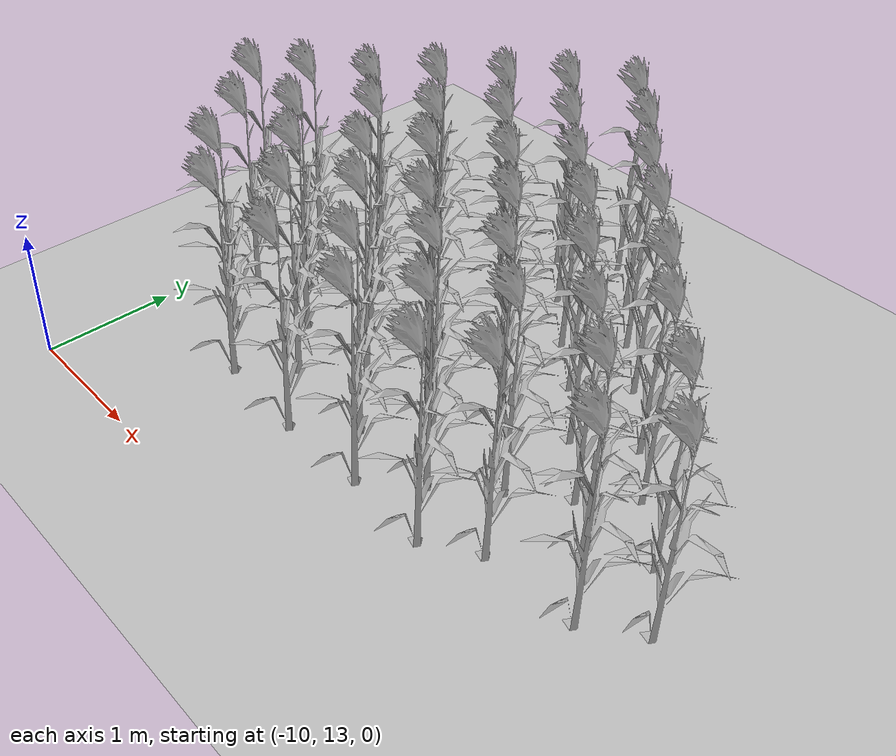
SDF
<sdf version="1.7">
 <world name="farmland_world">
  <model name="ground_plane">
   <static>1</static>
   <link name="link">
    <collision name="collision">
     <geometry><plane><normal>0 0 1</normal><size>40.0 40.0</size></plane></geometry>
     <surface><friction><ode><mu>100</mu><mu2>50</mu2></ode></friction></surface>
    </collision>
    <visual name="visual">
     <cast_shadows>0</cast_shadows>
     <geometry><plane><normal>0 0 1</normal><size>40.0 40.0</size></plane></geometry>
     <material>
      <script><uri>file://media/materials/scripts/gazebo.material</uri><name>Gazebo/Grey</name></script>
     </material>
    </visual>
   </link>
  </model>
  <model name="tree_3_38">
   <static>1</static>
   <link name="link">
    <collision name="collision">
     <geometry><mesh><uri>model://Corn_low_poly/corn.obj</uri><scale>1 1 1</scale></mesh></geometry>
     <surface><friction><ode><mu>100</mu><mu2>50</mu2></ode></friction></surface>
    </collision>
    <visual name="visual">
     <geometry><mesh><uri>model://Corn_low_poly/corn.obj</uri><scale>1 1 1</scale></mesh></geometry>
    </visual>
   </link>
   <pose>-8.891174129363076 13.91824194606996 0 0 0 0</pose>
  </model>
  <model name="tree_3_39">
   <static>1</static>
   <link name="link">
    <collision name="collision">
     <geometry><mesh><uri>model://Corn_low_poly/corn.obj</uri><scale>1 1 1</scale></mesh></geometry>
     <surface><friction><ode><mu>100</mu><mu2>50</mu2></ode></friction></surface>
    </collision>
    <visual name="visual">
     <geometry><mesh><uri>model://Corn_low_poly/corn.obj</uri><scale>1 1 1</scale></mesh></geometry>
    </visual>
   </link>
   <pose>-9.307649380660706 14.218395403183546 0 0 0 0</pose>
  </model>
  <model name="tree_3_40">
   <static>1</static>
   <link name="link">
    <collision name="collision">
     <geometry><mesh><uri>model://Corn_low_poly/corn.obj</uri><scale>1 1 1</scale></mesh></geometry>
     <surface><friction><ode><mu>100</mu><mu2>50</mu2></ode></friction></surface>
    </collision>
    <visual name="visual">
     <geometry><mesh><uri>model://Corn_low_poly/corn.obj</uri><scale>1 1 1</scale></mesh></geometry>
    </visual>
   </link>
   <pose>-9.621351456724668 14.651758770271607 0 0 0 0</pose>
  </model>
  <model name="tree_3_41">
   <static>1</static>
   <link name="link">
    <collision name="collision">
     <geometry><mesh><uri>model://Corn_low_poly/corn.obj</uri><scale>1 1 1</scale></mesh></geometry>
     <surface><friction><ode><mu>100</mu><mu2>50</mu2></ode></friction></surface>
    </collision>
    <visual name="visual">
     <geometry><mesh><uri>model://Corn_low_poly/corn.obj</uri><scale>1 1 1</scale></mesh></geometry>
    </visual>
   </link>
   <pose>-9.985132939946 15.040043317198316 0 0 0 0</pose>
  </model>
  <model name="tree_3_79">
   <static>1</static>
   <link name="link">
    <collision name="collision">
     <geometry><mesh><uri>model://Corn_low_poly/corn.obj</uri><scale>1 1 1</scale></mesh></geometry>
     <surface><friction><ode><mu>100</mu><mu2>50</mu2></ode></friction></surface>
    </collision>
    <visual name="visual">
     <geometry><mesh><uri>model://Corn_low_poly/corn.obj</uri><scale>1 1 1</scale></mesh></geometry>
    </visual>
   </link>
   <pose>-8.167578024957358 13.864423715161175 0 0 0 0</pose>
  </model>
  <model name="tree_3_80">
   <static>1</static>
   <link name="link">
    <collision name="collision">
     <geometry><mesh><uri>model://Corn_low_poly/corn.obj</uri><scale>1 1 1</scale></mesh></geometry>
     <surface><friction><ode><mu>100</mu><mu2>50</mu2></ode></friction></surface>
    </collision>
    <visual name="visual">
     <geometry><mesh><uri>model://Corn_low_poly/corn.obj</uri><scale>1 1 1</scale></mesh></geometry>
    </visual>
   </link>
   <pose>-8.600329314650093 14.276255841382465 0 0 0 0</pose>
  </model>
  <model name="tree_3_81">
   <static>1</static>
   <link name="link">
    <collision name="collision">
     <geometry><mesh><uri>model://Corn_low_poly/corn.obj</uri><scale>1 1 1</scale></mesh></geometry>
     <surface><friction><ode><mu>100</mu><mu2>50</mu2></ode></friction></surface>
    </collision>
    <visual name="visual">
     <geometry><mesh><uri>model://Corn_low_poly/corn.obj</uri><scale>1 1 1</scale></mesh></geometry>
    </visual>
   </link>
   <pose>-8.965540753583443 14.631921202328222 0 0 0 0</pose>
  </model>
  <model name="tree_3_82">
   <static>1</static>
   <link name="link">
    <collision name="collision">
     <geometry><mesh><uri>model://Corn_low_poly/corn.obj</uri><scale>1 1 1</scale></mesh></geometry>
     <surface><friction><ode><mu>100</mu><mu2>50</mu2></ode></friction></surface>
    </collision>
    <visual name="visual">
     <geometry><mesh><uri>model://Corn_low_poly/corn.obj</uri><scale>1 1 1</scale></mesh></geometry>
    </visual>
   </link>
   <pose>-9.341134822959361 14.934578791125151 0 0 0 0</pose>
  </model>
  <model name="tree_3_83">
   <static>1</static>
   <link name="link">
    <collision name="collision">
     <geometry><mesh><uri>model://Corn_low_poly/corn.obj</uri><scale>1 1 1</scale></mesh></geometry>
     <surface><friction><ode><mu>100</mu><mu2>50</mu2></ode></friction></surface>
    </collision>
    <visual name="visual">
     <geometry><mesh><uri>model://Corn_low_poly/corn.obj</uri><scale>1 1 1</scale></mesh></geometry>
    </visual>
   </link>
   <pose>-9.716573105773191 15.33830600436325 0 0 0 0</pose>
  </model>
  <model name="tree_3_120">
   <static>1</static>
   <link name="link">
    <collision name="collision">
     <geometry><mesh><uri>model://Corn_low_poly/corn.obj</uri><scale>1 1 1</scale></mesh></geometry>
     <surface><friction><ode><mu>100</mu><mu2>50</mu2></ode></friction></surface>
    </collision>
    <visual name="visual">
     <geometry><mesh><uri>model://Corn_low_poly/corn.obj</uri><scale>1 1 1</scale></mesh></geometry>
    </visual>
   </link>
   <pose>-7.483291994920764 13.883653861560314 0 0 0 0</pose>
  </model>
  <model name="tree_3_121">
   <static>1</static>
   <link name="link">
    <collision name="collision">
     <geometry><mesh><uri>model://Corn_low_poly/corn.obj</uri><scale>1 1 1</scale></mesh></geometry>
     <surface><friction><ode><mu>100</mu><mu2>50</mu2></ode></friction></surface>
    </collision>
    <visual name="visual">
     <geometry><mesh><uri>model://Corn_low_poly/corn.obj</uri><scale>1 1 1</scale></mesh></geometry>
    </visual>
   </link>
   <pose>-7.828971657432185 14.207264702212273 0 0 0 0</pose>
  </model>
  <model name="tree_3_122">
   <static>1</static>
   <link name="link">
    <collision name="collision">
     <geometry><mesh><uri>model://Corn_low_poly/corn.obj</uri><scale>1 1 1</scale></mesh></geometry>
     <surface><friction><ode><mu>100</mu><mu2>50</mu2></ode></friction></surface>
    </collision>
    <visual name="visual">
     <geometry><mesh><uri>model://Corn_low_poly/corn.obj</uri><scale>1 1 1</scale></mesh></geometry>
    </visual>
   </link>
   <pose>-8.248117083434586 14.61874428466852 0 0 0 0</pose>
  </model>
  <model name="tree_3_123">
   <static>1</static>
   <link name="link">
    <collision name="collision">
     <geometry><mesh><uri>model://Corn_low_poly/corn.obj</uri><scale>1 1 1</scale></mesh></geometry>
     <surface><friction><ode><mu>100</mu><mu2>50</mu2></ode></friction></surface>
    </collision>
    <visual name="visual">
     <geometry><mesh><uri>model://Corn_low_poly/corn.obj</uri><scale>1 1 1</scale></mesh></geometry>
    </visual>
   </link>
   <pose>-8.617351034218144 14.964083626259745 0 0 0 0</pose>
  </model>
  <model name="tree_3_124">
   <static>1</static>
   <link name="link">
    <collision name="collision">
     <geometry><mesh><uri>model://Corn_low_poly/corn.obj</uri><scale>1 1 1</scale></mesh></geometry>
     <surface><friction><ode><mu>100</mu><mu2>50</mu2></ode></friction></surface>
    </collision>
    <visual name="visual">
     <geometry><mesh><uri>model://Corn_low_poly/corn.obj</uri><scale>1 1 1</scale></mesh></geometry>
    </visual>
   </link>
   <pose>-8.9673074540992 15.352462581514478 0 0 0 0</pose>
  </model>
  <model name="tree_3_125">
   <static>1</static>
   <link name="link">
    <collision name="collision">
     <geometry><mesh><uri>model://Corn_low_poly/corn.obj</uri><scale>1 1 1</scale></mesh></geometry>
     <surface><friction><ode><mu>100</mu><mu2>50</mu2></ode></friction></surface>
    </collision>
    <visual name="visual">
     <geometry><mesh><uri>model://Corn_low_poly/corn.obj</uri><scale>1 1 1</scale></mesh></geometry>
    </visual>
   </link>
   <pose>-9.342893099528833 15.64641191831029 0 0 0 0</pose>
  </model>
  <model name="tree_3_161">
   <static>1</static>
   <link name="link">
    <collision name="collision">
     <geometry><mesh><uri>model://Corn_low_poly/corn.obj</uri><scale>1 1 1</scale></mesh></geometry>
     <surface><friction><ode><mu>100</mu><mu2>50</mu2></ode></friction></surface>
    </collision>
    <visual name="visual">
     <geometry><mesh><uri>model://Corn_low_poly/corn.obj</uri><scale>1 1 1</scale></mesh></geometry>
    </visual>
   </link>
   <pose>-6.845026655220183 13.849787404218223 0 0 0 0</pose>
  </model>
  <model name="tree_3_162">
   <static>1</static>
   <link name="link">
    <collision name="collision">
     <geometry><mesh><uri>model://Corn_low_poly/corn.obj</uri><scale>1 1 1</scale></mesh></geometry>
     <surface><friction><ode><mu>100</mu><mu2>50</mu2></ode></friction></surface>
    </collision>
    <visual name="visual">
     <geometry><mesh><uri>model://Corn_low_poly/corn.obj</uri><scale>1 1 1</scale></mesh></geometry>
    </visual>
   </link>
   <pose>-7.150239401687551 14.20265445098339 0 0 0 0</pose>
  </model>
  <model name="tree_3_163">
   <static>1</static>
   <link name="link">
    <collision name="collision">
     <geometry><mesh><uri>model://Corn_low_poly/corn.obj</uri><scale>1 1 1</scale></mesh></geometry>
     <surface><friction><ode><mu>100</mu><mu2>50</mu2></ode></friction></surface>
    </collision>
    <visual name="visual">
     <geometry><mesh><uri>model://Corn_low_poly/corn.obj</uri><scale>1 1 1</scale></mesh></geometry>
    </visual>
   </link>
   <pose>-7.5103032101220935 14.580755709355337 0 0 0 0</pose>
  </model>
  <model name="tree_3_164">
   <static>1</static>
   <link name="link">
    <collision name="collision">
     <geometry><mesh><uri>model://Corn_low_poly/corn.obj</uri><scale>1 1 1</scale></mesh></geometry>
     <surface><friction><ode><mu>100</mu><mu2>50</mu2></ode></friction></surface>
    </collision>
    <visual name="visual">
     <geometry><mesh><uri>model://Corn_low_poly/corn.obj</uri><scale>1 1 1</scale></mesh></geometry>
    </visual>
   </link>
   <pose>-7.882221309228659 14.867059814286716 0 0 0 0</pose>
  </model>
  <model name="tree_3_165">
   <static>1</static>
   <link name="link">
    <collision name="collision">
     <geometry><mesh><uri>model://Corn_low_poly/corn.obj</uri><scale>1 1 1</scale></mesh></geometry>
     <surface><friction><ode><mu>100</mu><mu2>50</mu2></ode></friction></surface>
    </collision>
    <visual name="visual">
     <geometry><mesh><uri>model://Corn_low_poly/corn.obj</uri><scale>1 1 1</scale></mesh></geometry>
    </visual>
   </link>
   <pose>-8.314603599865444 15.288483118946912 0 0 0 0</pose>
  </model>
  <model name="tree_3_166">
   <static>1</static>
   <link name="link">
    <collision name="collision">
     <geometry><mesh><uri>model://Corn_low_poly/corn.obj</uri><scale>1 1 1</scale></mesh></geometry>
     <surface><friction><ode><mu>100</mu><mu2>50</mu2></ode></friction></surface>
    </collision>
    <visual name="visual">
     <geometry><mesh><uri>model://Corn_low_poly/corn.obj</uri><scale>1 1 1</scale></mesh></geometry>
    </visual>
   </link>
   <pose>-8.651029424888728 15.645671582871948 0 0 0 0</pose>
  </model>
  <model name="tree_3_167">
   <static>1</static>
   <link name="link">
    <collision name="collision">
     <geometry><mesh><uri>model://Corn_low_poly/corn.obj</uri><scale>1 1 1</scale></mesh></geometry>
     <surface><friction><ode><mu>100</mu><mu2>50</mu2></ode></friction></surface>
    </collision>
    <visual name="visual">
     <geometry><mesh><uri>model://Corn_low_poly/corn.obj</uri><scale>1 1 1</scale></mesh></geometry>
    </visual>
   </link>
   <pose>-9.045445254423946 16.038293757891783 0 0 0 0</pose>
  </model>
  <model name="tree_3_203">
   <static>1</static>
   <link name="link">
    <collision name="collision">
     <geometry><mesh><uri>model://Corn_low_poly/corn.obj</uri><scale>1 1 1</scale></mesh></geometry>
     <surface><friction><ode><mu>100</mu><mu2>50</mu2></ode></friction></surface>
    </collision>
    <visual name="visual">
     <geometry><mesh><uri>model://Corn_low_poly/corn.obj</uri><scale>1 1 1</scale></mesh></geometry>
    </visual>
   </link>
   <pose>-6.496506932567802 14.090196139342972 0 0 0 0</pose>
  </model>
  <model name="tree_3_204">
   <static>1</static>
   <link name="link">
    <collision name="collision">
     <geometry><mesh><uri>model://Corn_low_poly/corn.obj</uri><scale>1 1 1</scale></mesh></geometry>
     <surface><friction><ode><mu>100</mu><mu2>50</mu2></ode></friction></surface>
    </collision>
    <visual name="visual">
     <geometry><mesh><uri>model://Corn_low_poly/corn.obj</uri><scale>1 1 1</scale></mesh></geometry>
    </visual>
   </link>
   <pose>-6.7928915732429 14.545404306601862 0 0 0 0</pose>
  </model>
  <model name="tree_3_205">
   <static>1</static>
   <link name="link">
    <collision name="collision">
     <geometry><mesh><uri>model://Corn_low_poly/corn.obj</uri><scale>1 1 1</scale></mesh></geometry>
     <surface><friction><ode><mu>100</mu><mu2>50</mu2></ode></friction></surface>
    </collision>
    <visual name="visual">
     <geometry><mesh><uri>model://Corn_low_poly/corn.obj</uri><scale>1 1 1</scale></mesh></geometry>
    </visual>
   </link>
   <pose>-7.177286279498393 14.871963747843747 0 0 0 0</pose>
  </model>
  <model name="tree_3_206">
   <static>1</static>
   <link name="link">
    <collision name="collision">
     <geometry><mesh><uri>model://Corn_low_poly/corn.obj</uri><scale>1 1 1</scale></mesh></geometry>
     <surface><friction><ode><mu>100</mu><mu2>50</mu2></ode></friction></surface>
    </collision>
    <visual name="visual">
     <geometry><mesh><uri>model://Corn_low_poly/corn.obj</uri><scale>1 1 1</scale></mesh></geometry>
    </visual>
   </link>
   <pose>-7.524567767702653 15.266206441734292 0 0 0 0</pose>
  </model>
  <model name="tree_3_207">
   <static>1</static>
   <link name="link">
    <collision name="collision">
     <geometry><mesh><uri>model://Corn_low_poly/corn.obj</uri><scale>1 1 1</scale></mesh></geometry>
     <surface><friction><ode><mu>100</mu><mu2>50</mu2></ode></friction></surface>
    </collision>
    <visual name="visual">
     <geometry><mesh><uri>model://Corn_low_poly/corn.obj</uri><scale>1 1 1</scale></mesh></geometry>
    </visual>
   </link>
   <pose>-7.89063536347098 15.616199905616472 0 0 0 0</pose>
  </model>
  <model name="tree_3_208">
   <static>1</static>
   <link name="link">
    <collision name="collision">
     <geometry><mesh><uri>model://Corn_low_poly/corn.obj</uri><scale>1 1 1</scale></mesh></geometry>
     <surface><friction><ode><mu>100</mu><mu2>50</mu2></ode></friction></surface>
    </collision>
    <visual name="visual">
     <geometry><mesh><uri>model://Corn_low_poly/corn.obj</uri><scale>1 1 1</scale></mesh></geometry>
    </visual>
   </link>
   <pose>-8.31725446418663 15.995354845681133 0 0 0 0</pose>
  </model>
  <model name="tree_3_209">
   <static>1</static>
   <link name="link">
    <collision name="collision">
     <geometry><mesh><uri>model://Corn_low_poly/corn.obj</uri><scale>1 1 1</scale></mesh></geometry>
     <surface><friction><ode><mu>100</mu><mu2>50</mu2></ode></friction></surface>
    </collision>
    <visual name="visual">
     <geometry><mesh><uri>model://Corn_low_poly/corn.obj</uri><scale>1 1 1</scale></mesh></geometry>
    </visual>
   </link>
   <pose>-8.673989058153081 16.379698872209197 0 0 0 0</pose>
  </model>
  <model name="tree_3_244">
   <static>1</static>
   <link name="link">
    <collision name="collision">
     <geometry><mesh><uri>model://Corn_low_poly/corn.obj</uri><scale>1 1 1</scale></mesh></geometry>
     <surface><friction><ode><mu>100</mu><mu2>50</mu2></ode></friction></surface>
    </collision>
    <visual name="visual">
     <geometry><mesh><uri>model://Corn_low_poly/corn.obj</uri><scale>1 1 1</scale></mesh></geometry>
    </visual>
   </link>
   <pose>-5.80946691772435 14.125211774315895 0 0 0 0</pose>
  </model>
  <model name="tree_3_245">
   <static>1</static>
   <link name="link">
    <collision name="collision">
     <geometry><mesh><uri>model://Corn_low_poly/corn.obj</uri><scale>1 1 1</scale></mesh></geometry>
     <surface><friction><ode><mu>100</mu><mu2>50</mu2></ode></friction></surface>
    </collision>
    <visual name="visual">
     <geometry><mesh><uri>model://Corn_low_poly/corn.obj</uri><scale>1 1 1</scale></mesh></geometry>
    </visual>
   </link>
   <pose>-6.114767333163991 14.521435371826511 0 0 0 0</pose>
  </model>
  <model name="tree_3_246">
   <static>1</static>
   <link name="link">
    <collision name="collision">
     <geometry><mesh><uri>model://Corn_low_poly/corn.obj</uri><scale>1 1 1</scale></mesh></geometry>
     <surface><friction><ode><mu>100</mu><mu2>50</mu2></ode></friction></surface>
    </collision>
    <visual name="visual">
     <geometry><mesh><uri>model://Corn_low_poly/corn.obj</uri><scale>1 1 1</scale></mesh></geometry>
    </visual>
   </link>
   <pose>-6.4580259417450705 14.841731782894028 0 0 0 0</pose>
  </model>
  <model name="tree_3_247">
   <static>1</static>
   <link name="link">
    <collision name="collision">
     <geometry><mesh><uri>model://Corn_low_poly/corn.obj</uri><scale>1 1 1</scale></mesh></geometry>
     <surface><friction><ode><mu>100</mu><mu2>50</mu2></ode></friction></surface>
    </collision>
    <visual name="visual">
     <geometry><mesh><uri>model://Corn_low_poly/corn.obj</uri><scale>1 1 1</scale></mesh></geometry>
    </visual>
   </link>
   <pose>-6.852962348636145 15.225188194240992 0 0 0 0</pose>
  </model>
  <model name="tree_3_248">
   <static>1</static>
   <link name="link">
    <collision name="collision">
     <geometry><mesh><uri>model://Corn_low_poly/corn.obj</uri><scale>1 1 1</scale></mesh></geometry>
     <surface><friction><ode><mu>100</mu><mu2>50</mu2></ode></friction></surface>
    </collision>
    <visual name="visual">
     <geometry><mesh><uri>model://Corn_low_poly/corn.obj</uri><scale>1 1 1</scale></mesh></geometry>
    </visual>
   </link>
   <pose>-7.218884295110604 15.616212279994588 0 0 0 0</pose>
  </model>
  <model name="tree_3_249">
   <static>1</static>
   <link name="link">
    <collision name="collision">
     <geometry><mesh><uri>model://Corn_low_poly/corn.obj</uri><scale>1 1 1</scale></mesh></geometry>
     <surface><friction><ode><mu>100</mu><mu2>50</mu2></ode></friction></surface>
    </collision>
    <visual name="visual">
     <geometry><mesh><uri>model://Corn_low_poly/corn.obj</uri><scale>1 1 1</scale></mesh></geometry>
    </visual>
   </link>
   <pose>-7.586350438723224 15.933378378704163 0 0 0 0</pose>
  </model>
  <model name="tree_3_250">
   <static>1</static>
   <link name="link">
    <collision name="collision">
     <geometry><mesh><uri>model://Corn_low_poly/corn.obj</uri><scale>1 1 1</scale></mesh></geometry>
     <surface><friction><ode><mu>100</mu><mu2>50</mu2></ode></friction></surface>
    </collision>
    <visual name="visual">
     <geometry><mesh><uri>model://Corn_low_poly/corn.obj</uri><scale>1 1 1</scale></mesh></geometry>
    </visual>
   </link>
   <pose>-7.98044531470164 16.31313039919408 0 0 0 0</pose>
  </model>
  <model name="tree_3_251">
   <static>1</static>
   <link name="link">
    <collision name="collision">
     <geometry><mesh><uri>model://Corn_low_poly/corn.obj</uri><scale>1 1 1</scale></mesh></geometry>
     <surface><friction><ode><mu>100</mu><mu2>50</mu2></ode></friction></surface>
    </collision>
    <visual name="visual">
     <geometry><mesh><uri>model://Corn_low_poly/corn.obj</uri><scale>1 1 1</scale></mesh></geometry>
    </visual>
   </link>
   <pose>-8.34274440168168 16.696665041333485 0 0 0 0</pose>
  </model>
  <model name="tree_3_286">
   <static>1</static>
   <link name="link">
    <collision name="collision">
     <geometry><mesh><uri>model://Corn_low_poly/corn.obj</uri><scale>1 1 1</scale></mesh></geometry>
     <surface><friction><ode><mu>100</mu><mu2>50</mu2></ode></friction></surface>
    </collision>
    <visual name="visual">
     <geometry><mesh><uri>model://Corn_low_poly/corn.obj</uri><scale>1 1 1</scale></mesh></geometry>
    </visual>
   </link>
   <pose>-5.462757975168495 14.398331817759365 0 0 0 0</pose>
  </model>
  <model name="tree_3_287">
   <static>1</static>
   <link name="link">
    <collision name="collision">
     <geometry><mesh><uri>model://Corn_low_poly/corn.obj</uri><scale>1 1 1</scale></mesh></geometry>
     <surface><friction><ode><mu>100</mu><mu2>50</mu2></ode></friction></surface>
    </collision>
    <visual name="visual">
     <geometry><mesh><uri>model://Corn_low_poly/corn.obj</uri><scale>1 1 1</scale></mesh></geometry>
    </visual>
   </link>
   <pose>-5.781529588418843 14.799876107439617 0 0 0 0</pose>
  </model>
  <model name="tree_3_288">
   <static>1</static>
   <link name="link">
    <collision name="collision">
     <geometry><mesh><uri>model://Corn_low_poly/corn.obj</uri><scale>1 1 1</scale></mesh></geometry>
     <surface><friction><ode><mu>100</mu><mu2>50</mu2></ode></friction></surface>
    </collision>
    <visual name="visual">
     <geometry><mesh><uri>model://Corn_low_poly/corn.obj</uri><scale>1 1 1</scale></mesh></geometry>
    </visual>
   </link>
   <pose>-6.1858796990839595 15.168695042439769 0 0 0 0</pose>
  </model>
  <model name="tree_3_289">
   <static>1</static>
   <link name="link">
    <collision name="collision">
     <geometry><mesh><uri>model://Corn_low_poly/corn.obj</uri><scale>1 1 1</scale></mesh></geometry>
     <surface><friction><ode><mu>100</mu><mu2>50</mu2></ode></friction></surface>
    </collision>
    <visual name="visual">
     <geometry><mesh><uri>model://Corn_low_poly/corn.obj</uri><scale>1 1 1</scale></mesh></geometry>
    </visual>
   </link>
   <pose>-6.488793604992499 15.512209666523583 0 0 0 0</pose>
  </model>
  <model name="tree_3_290">
   <static>1</static>
   <link name="link">
    <collision name="collision">
     <geometry><mesh><uri>model://Corn_low_poly/corn.obj</uri><scale>1 1 1</scale></mesh></geometry>
     <surface><friction><ode><mu>100</mu><mu2>50</mu2></ode></friction></surface>
    </collision>
    <visual name="visual">
     <geometry><mesh><uri>model://Corn_low_poly/corn.obj</uri><scale>1 1 1</scale></mesh></geometry>
    </visual>
   </link>
   <pose>-6.9059757294177 15.94117651307497 0 0 0 0</pose>
  </model>
  <model name="tree_3_291">
   <static>1</static>
   <link name="link">
    <collision name="collision">
     <geometry><mesh><uri>model://Corn_low_poly/corn.obj</uri><scale>1 1 1</scale></mesh></geometry>
     <surface><friction><ode><mu>100</mu><mu2>50</mu2></ode></friction></surface>
    </collision>
    <visual name="visual">
     <geometry><mesh><uri>model://Corn_low_poly/corn.obj</uri><scale>1 1 1</scale></mesh></geometry>
    </visual>
   </link>
   <pose>-7.270239200453114 16.291808770758596 0 0 0 0</pose>
  </model>
  <model name="tree_3_292">
   <static>1</static>
   <link name="link">
    <collision name="collision">
     <geometry><mesh><uri>model://Corn_low_poly/corn.obj</uri><scale>1 1 1</scale></mesh></geometry>
     <surface><friction><ode><mu>100</mu><mu2>50</mu2></ode></friction></surface>
    </collision>
    <visual name="visual">
     <geometry><mesh><uri>model://Corn_low_poly/corn.obj</uri><scale>1 1 1</scale></mesh></geometry>
    </visual>
   </link>
   <pose>-7.59692779500517 16.666652028990928 0 0 0 0</pose>
  </model>
  <model name="tree_3_293">
   <static>1</static>
   <link name="link">
    <collision name="collision">
     <geometry><mesh><uri>model://Corn_low_poly/corn.obj</uri><scale>1 1 1</scale></mesh></geometry>
     <surface><friction><ode><mu>100</mu><mu2>50</mu2></ode></friction></surface>
    </collision>
    <visual name="visual">
     <geometry><mesh><uri>model://Corn_low_poly/corn.obj</uri><scale>1 1 1</scale></mesh></geometry>
    </visual>
   </link>
   <pose>-7.954828932970279 16.988594113414432 0 0 0 0</pose>
  </model>
 </world>
</sdf>
